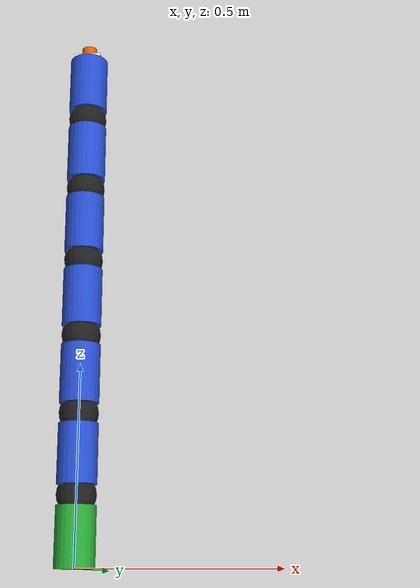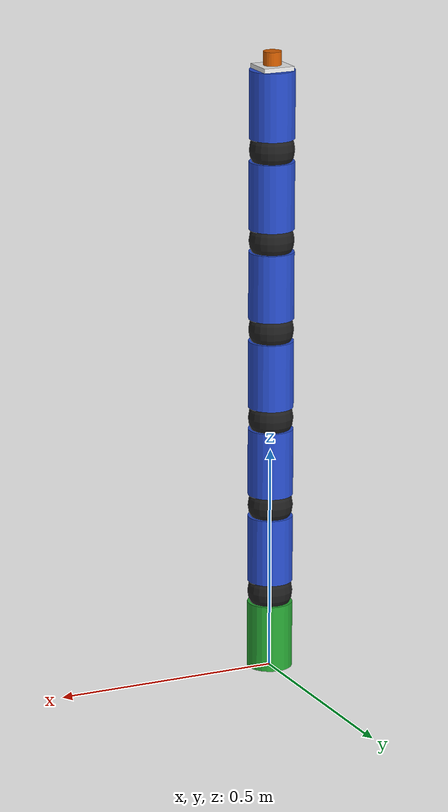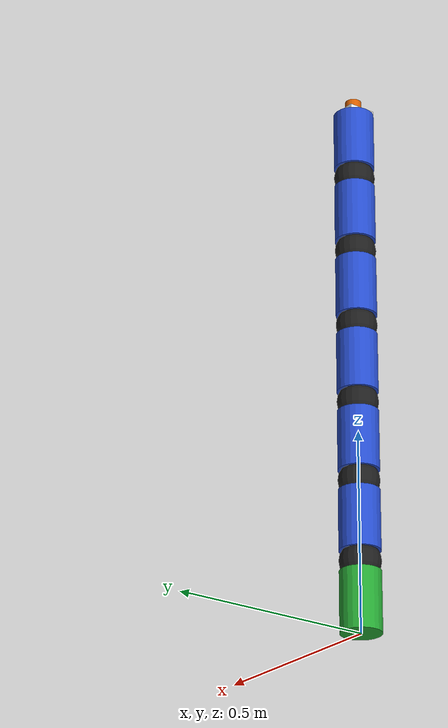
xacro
<?xml version="1.0"?>
<robot xmlns:xacro="http://www.ros.org/wiki/xacro" name="cobra">

    <!-- MACROS -->

    <xacro:macro name="body_link" params="base_name parent_name colour">

        <link name="${base_name}_aux">
            <inertial>
                <origin xyz="0 0 0.025" rpy="0 0 0"/>
                <mass value="0.1" />
                <inertia ixx="0.002" ixy="0.0" ixz="0.0" iyy="0.02" iyz="0.0" izz="0.002"/>
            </inertial>
            <collision>
                <origin xyz="0 0 0.025" rpy="0 0 0"/>
                <geometry>
                    <sphere radius="0.025"/>
                </geometry>
                <self_collide>false</self_collide>
            </collision>
            <visual>
                <origin xyz="0 0 0.025" rpy="0 0 0"/>
                <geometry>
                    <sphere radius="0.05"/>
                </geometry>
            </visual>
    	</link>

    	<gazebo reference="${base_name}_aux">
            <kp>100.0</kp>
            <kd>1.0</kd>
            <mu1>10.0</mu1>
            <mu2>10.0</mu2>
            <material>Gazebo/Black</material>
            <self_collide>1</self_collide>
        </gazebo>

        <link name="${base_name}">
     	    <inertial>
                <origin xyz="0 0 0.075" rpy="0 0 0"/>
                <mass value="0.1" />
                <inertia ixx="0.002" ixy="0.0" ixz="0.0" iyy="0.02" iyz="0.0" izz="0.002"/>
            </inertial>
            <collision>
                <origin xyz="0 0 0.075" rpy="0 0 0"/>
                <geometry>
                    <cylinder radius="0.05" length="0.15"/>
                </geometry>
                <self_collide>false</self_collide>
            </collision>
            <visual>
                <origin xyz="0 0 0.075" rpy="0 0 0"/>
                <geometry>
                    <cylinder radius="0.05" length="0.15"/>
                </geometry>
            </visual>
    	</link>

    	<gazebo reference="${base_name}">
            <kp>100.0</kp>
            <kd>1.0</kd>
            <mu1>1.0</mu1>
            <mu2>1.0</mu2>
            <material>Gazebo/${colour}</material>
            <self_collide>1</self_collide>
        </gazebo>

        <!-- We add to the Origin displacement a margin for flex due to self colisions for parent_name and base_name-->
        <joint name="${base_name}_aux_joint" type="revolute">
            <parent link="${parent_name}"/>
        	<child link="${base_name}_aux"/>
            <origin xyz="0 0 0.15" rpy="0 0 0"/>
            <limit lower="-1.5708" upper="1.5708" effort="100.0" velocity="0.5"/>
            <axis xyz="1 0 0"/>
            <dynamics damping="10" friction="10"/>
            <disable_collision>true</disable_collision>
    	</joint>

        <joint name="${base_name}_joint" type="revolute">
    	    <parent link="${base_name}_aux"/>
        	<child link="${base_name}"/>
            <origin xyz="0 0 0.05" rpy="0 0 0"/>
            <limit lower="-1.5708" upper="1.5708" effort="100.0" velocity="0.5"/>
            <axis xyz="0 1 0"/>
            <dynamics damping="10" friction="10"/>
            <disable_collision>true</disable_collision>
    	</joint>

	    <transmission name="tran${base_name}_aux">
            <type>transmission_interface/SimpleTransmission</type>
            <joint name="${base_name}_aux_joint">
                <hardwareInterface>hardware_interface/EffortJointInterface</hardwareInterface>
            </joint>
            <actuator name="motor${base_name}_aux">
                <hardwareInterface>hardware_interface/EffortJointInterface</hardwareInterface>
                <mechanicalReduction>1</mechanicalReduction>
            </actuator>
        </transmission>

        <transmission name="tran${base_name}">
            <type>transmission_interface/SimpleTransmission</type>
            <joint name="${base_name}_joint">
                <hardwareInterface>hardware_interface/EffortJointInterface</hardwareInterface>
            </joint>
            <actuator name="motor${base_name}">
                <hardwareInterface>hardware_interface/EffortJointInterface</hardwareInterface>
                <mechanicalReduction>1</mechanicalReduction>
            </actuator>
        </transmission>

    </xacro:macro>
	<!-- * * * Link Definitions * * * -->

    <link name="manipulator_link">
 	    <inertial>
            <origin xyz="0 0 0.075" rpy="0 0 0"/>
            <mass value="0.1" />
            <inertia ixx="0.002" ixy="0.0" ixz="0.0" iyy="0.02" iyz="0.0" izz="0.002"/>
        </inertial>
        <collision>
            <origin xyz="0 0 0.075" rpy="0 0 0"/>
            <geometry>
                <cylinder radius="0.05" length="0.15"/>
            </geometry>
        </collision>
        <visual>
            <origin xyz="0 0 0.075" rpy="0 0 0"/>
            <geometry>
                <cylinder radius="0.05" length="0.15"/>
            </geometry>
        </visual>
	</link>

    <gazebo reference="manipulator_link">
        <kp>100000000000000.0</kp>
        <kd>1.0</kd>
        <mu1>1.0</mu1>
        <mu2>1.0</mu2>
        <material>Gazebo/Green</material>
        <self_collide>0</self_collide>
    </gazebo>

    <xacro:body_link base_name="cobra_body_1" parent_name="manipulator_link" colour="Blue"/>
    <xacro:body_link base_name="cobra_body_2" parent_name="cobra_body_1" colour="Blue"/>
    <xacro:body_link base_name="cobra_body_3" parent_name="cobra_body_2" colour="Blue"/>
    <xacro:body_link base_name="cobra_body_4" parent_name="cobra_body_3" colour="Blue"/>
    <xacro:body_link base_name="cobra_body_5" parent_name="cobra_body_4" colour="Blue"/>
    <xacro:body_link base_name="cobra_body_6" parent_name="cobra_body_5" colour="Blue"/>

    <joint name="camera_joint" type="fixed">
        <origin xyz="0.0 0 0.175" rpy="0 -1.57 -1.57"/>
        <parent link="cobra_body_6"/>
        <child link="camera_link"/>
    </joint>

    <link name="camera_link">
        <inertial>
            <mass value="0.1" />
            <origin xyz="0 0 0" rpy="0 0 0"/>
            <inertia ixx="0.001" ixy="0.0" ixz="0.0" iyy="0.001" iyz="0.0" izz="0.001"/>
        </inertial>
        <visual>
            <origin xyz="-0.03 0 0" rpy="0 0 0"/>
            <geometry>
                <box size="0.03 0.07 0.07" />
            </geometry>
            <material name="white" />
        </visual>
        <visual>
            <origin xyz="0 0 0" rpy="0 ${pi/2} 0"/>
            <geometry>
                <cylinder length="0.03" radius="0.02" />
            </geometry>
        </visual>
        <collision>
            <origin xyz="0.0 0 0" rpy="0 0 0"/>
            <geometry>
                <box size="0.03 0.07 0.07" />
            </geometry>
            <self_collide>0</self_collide>
        </collision>
    </link>

    <joint name="camera_optical_joint" type="fixed">
        <origin xyz="0 0 0" rpy="-1.571 0 -1.571" />
        <parent link="camera_link" />
        <child link="camera_link_optical" />
    </joint>

    <link name="camera_link_optical"></link>

    <gazebo reference="camera_link">
        <sensor type="depth" name="my_camera">
            <update_rate>20</update_rate>
            <visualize>true</visualize>
            <camera name="cam">
                <horizontal_fov>1.3962634</horizontal_fov>
                <image>
                    <width>640</width>
                    <height>480</height>
                    <format>R8B8G8</format>
                </image>
                <clip>
                    <near>0.02</near>
                    <far>300</far>
                </clip>
                <noise>
                    <type>gaussian</type>
                    <mean>0.0</mean>
                    <stddev>0.007</stddev>
                </noise>
            </camera>
            <plugin name="camera_controller" filename="libgazebo_ros_camera.so">
                <frame_name>camera_link_optical</frame_name>
                <min_depth>0.1</min_depth>
                <max_depth>500</max_depth>
            </plugin>
        </sensor>
    </gazebo>

    <joint name="imu_joint_manipulator" type="fixed">
        <origin xyz="0.0 0 0.173" rpy="0 0 0" />
        <parent link="cobra_body_6" />
        <child link="imu_link_manipulator" />
    </joint>

    <link name="imu_link_manipulator"></link>

    <gazebo reference="imu_link_manipulator">
      <sensor name="imu_sensor" type="imu">
      <plugin filename="libgazebo_ros_imu_sensor.so" name="imu_plugin_1">
          <ros>
            <remapping>~/out:=imu/data_raw_1</remapping>
          </ros>
          <initial_orientation_as_reference>false</initial_orientation_as_reference>
        </plugin>
        <always_on>true</always_on>
        <update_rate>100</update_rate>
        <visualize>true</visualize>
      </sensor>
    </gazebo>

    <joint name="imu_joint_manipulator_2" type="fixed">
       <origin xyz="0.0 0 0.14" rpy="0 0 0" />
       <parent link="cobra_body_3" />
       <child link="imu_link_manipulator_2" />
    </joint>

    <link name="imu_link_manipulator_2"></link>

    <gazebo reference="imu_link_manipulator_2">
      <sensor name="imu_sensor_2" type="imu">
        <plugin filename="libgazebo_ros_imu_sensor.so" name="imu_plugin_2">
          <ros>
            <remapping>~/out:=imu/data_raw_2</remapping>
          </ros>
          <initial_orientation_as_reference>false</initial_orientation_as_reference>
        </plugin>
        <always_on>true</always_on>
        <update_rate>100</update_rate>
        <visualize>true</visualize>
      </sensor>
    </gazebo>

</robot>
